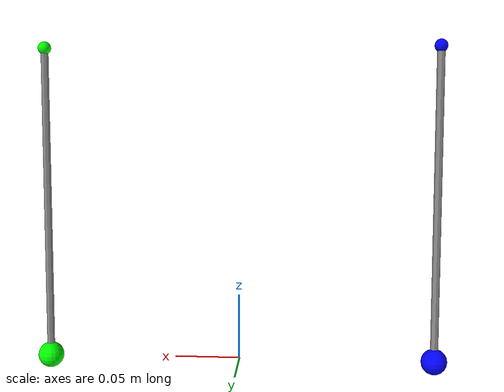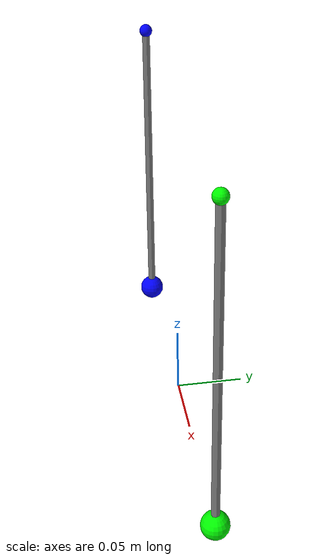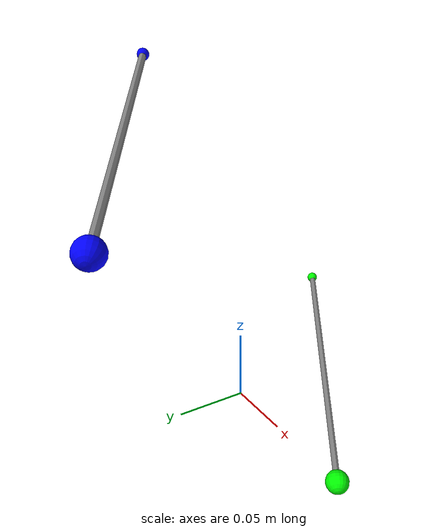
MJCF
<mujoco model="compliant_muscle_test">
  <!-- cmtu_integrator: Euler, RK4, ODE15s -->
  <option timestep="0.001" gravity="0 0 -9.81" integrator="Euler"/>

  <default>
    <!-- Compliant muscle default class -->
     <!-- F_max, l_opt, l_slack, v_max, W, C, N, K, E_REF -->
    <default class="compliant_muscle">
      <general biasprm="0" biastype="none" ctrllimited="true" ctrlrange="0 1"
               dynprm="0.01 0.04" dyntype="compliant_mtu"
               gainprm="1500 0.11 0.13 12.0 0.56 -2.995732274 1.5 5.0 0.04"
               gaintype="compliant_mtu"/>
    </default>

    <!-- Standard muscle for comparison -->
    <default class="standard_muscle">
      <!-- range(2), force, scale, lmin, lmax, vmax, fpmax, fvmax -->
      <general biasprm="0.1 0.5 1500 1 0 1.99579 10 1.86621 1.4 0"
               ctrllimited="true" ctrlrange="0 1"
               dynprm="0.01 0.04 0 0 0 0 0 0 0 0" dyntype="muscle"
               gainprm="0.1 0.5 1500 1 0 1.99579 10 1.86621 1.4 0"
               gaintype="muscle"/>
    </default>
  </default>

  <worldbody>
    <body name="ground"/>

    <!-- Fixed anchor sites for tendons -->
    <site name="fixed_c" pos="-0.15 0 0.24" size="0.005" rgba="0 0 1 1"/>
    <site name="fixed_r" pos="0.15 0 0.24" size="0.005" rgba="0 1 0 1"/>

    <!-- Point masses to be pulled by muscles -->
    <body name="mass_c" pos="-0.15 0 0">
      <joint name="slide_c" type="slide" axis="0 0 1" limited="false" range="-1 0.0" damping="0"/>
      <site name="mass_c_site" pos="0 0 0" size="0.005" rgba="0 0 1 1"/>
      <geom type="sphere" size="0.01" mass="10.0" rgba="0 0 1 1"/>
    </body>
    <body name="mass_r" pos="0.15 0 0">
      <joint name="slide_r" type="slide" axis="0 0 1" limited="false" range="-1 0.0" damping="0"/>
      <site name="mass_r_site" pos="0 0 0" size="0.005" rgba="0 1 0 1"/>
      <geom type="sphere" size="0.01" mass="10.0" rgba="0 1 0 1"/>
    </body>
  </worldbody>

  <!-- Tendon paths for muscles: fixed anchor to point mass site -->
  <tendon>
    <spatial name="tendon_c">
      <site site="fixed_c"/>
      <site site="mass_c_site"/>
    </spatial>
    <spatial name="tendon_r">
      <site site="fixed_r"/>
      <site site="mass_r_site"/>
    </spatial>
  </tendon>

  <actuator>
    <!-- Compliant muscle pulling left point mass -->
    <general class="compliant_muscle" name="compliant_muscle_c" tendon="tendon_c"/>

    <!-- Standard muscle pulling right point mass (for comparison) -->
    <muscle class="standard_muscle" name="standard_muscle_r" tendon="tendon_r"
            lengthrange="0.0575158 0.156738"/>
  </actuator>

  <sensor>
    <!-- Tendon length sensors -->
    <tendonpos name="len_c" tendon="tendon_c"/>
    <tendonpos name="len_r" tendon="tendon_r"/>

    <!-- Actuator force sensors -->
    <actuatorfrc name="frc_c" actuator="compliant_muscle_c"/>
    <actuatorfrc name="frc_r" actuator="standard_muscle_r"/>

    <!-- Joint position sensors -->
    <jointpos name="pos_c" joint="slide_c"/>
    <jointpos name="pos_r" joint="slide_r"/>

    <!-- Joint velocity sensors -->
    <jointvel name="vel_c" joint="slide_c"/>
    <jointvel name="vel_r" joint="slide_r"/>
  </sensor>
</mujoco>
